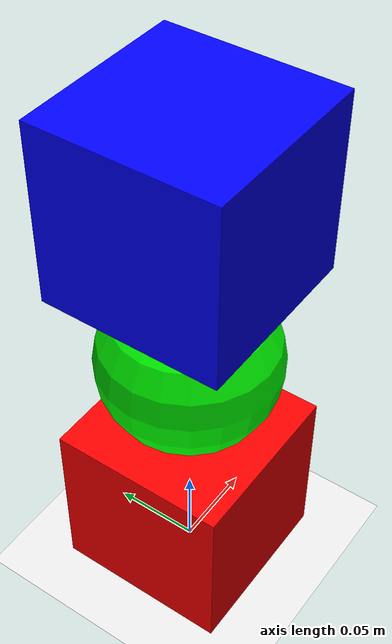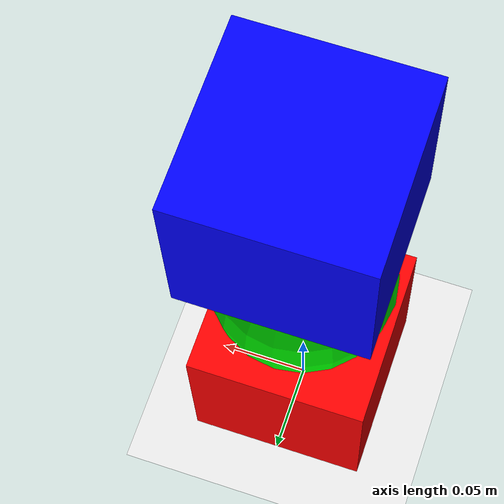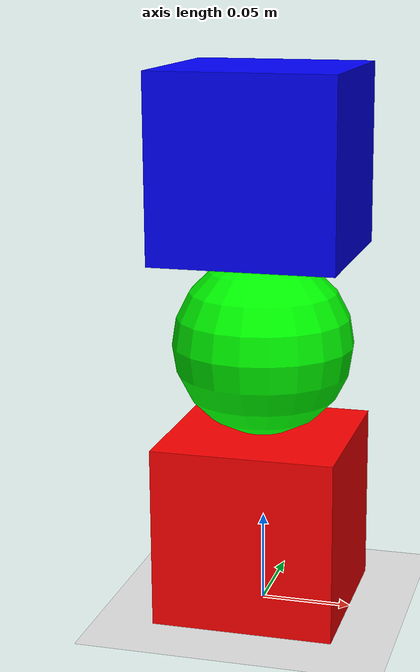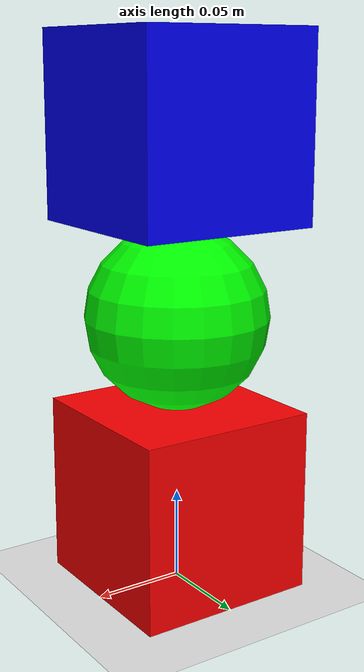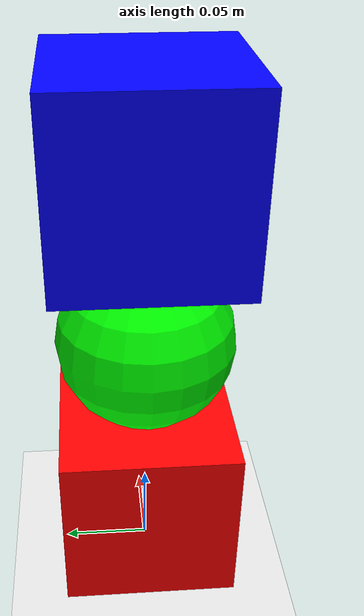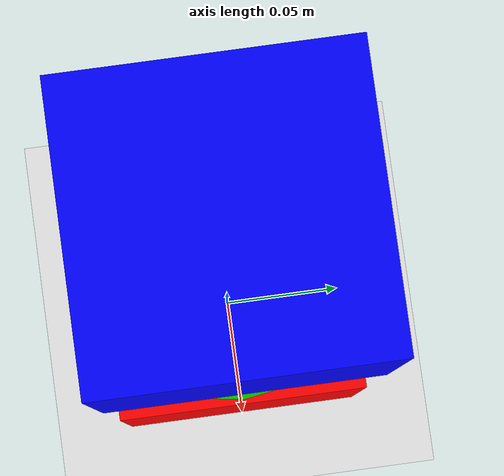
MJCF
<mujoco model="stacked_objects">
  <!-- Set up simulation options, including gravity -->
  <option gravity="0 0 -9.81" timestep="0.01" />

  <!-- Define assets, like materials or textures (optional for this simple case) -->
  <asset>
    <material name="red" rgba="1 0 0 1" />
    <material name="green" rgba="0 1 0 1" />
    <material name="blue" rgba="0 0 1 1" />
    <material name="floor" rgba="0.9 0.9 0.9 1" />
  </asset>

  <worldbody>

    <!-- A plane to act as the ground -->
    <geom name="floor" type="plane" size="2 2 0.1" material="floor" />

    <!-- Body 1: The bottom cube -->
    <body name="bottom_cube" pos="0 0 0.05">
      <joint name="bottom_cube_joint" type="free"/>
      <geom name="bottom_cube_geom" type="box" size="0.05 0.05 0.05" material="red" />
    </body>

    <!-- Body 2: The middle sphere -->
    <body name="middle_sphere" pos="0 0 0.15">
      <joint name="middle_sphere_joint" type="free"/>
      <geom name="middle_sphere_geom" type="sphere" size="0.05" material="green" />
    </body>

    <!-- Body 3: The top cube -->
    <body name="top_cube" pos="0 0 0.25">
      <joint name="top_cube_joint" type="free"/>
      <geom name="top_cube_geom" type="box" size="0.05 0.05 0.05" material="blue" />
    </body>

  </worldbody>
</mujoco>
